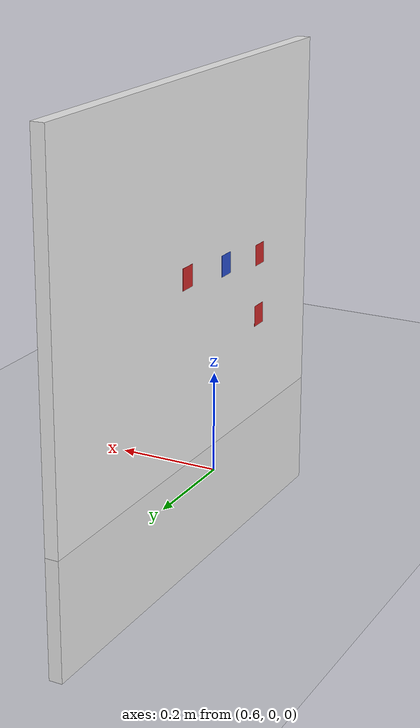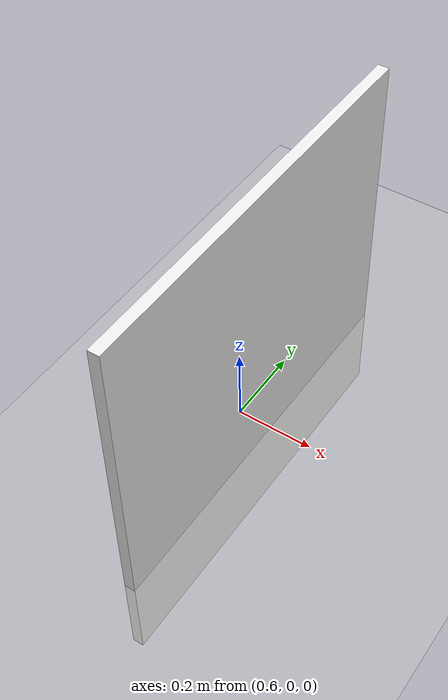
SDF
<sdf version="1.6">
 <world name="default">
  <light name="sun" type="directional">
   <pose>0 0 10 0 -0 0</pose>
   <diffuse>0.8 0.8 0.8 1</diffuse>
   <specular>0.2 0.2 0.2 1</specular>
   <attenuation>
    <range>1000</range>
    <constant>0.9</constant>
    <linear>0.01</linear>
    <quadratic>0.001</quadratic>
   </attenuation>
   <direction>-0.5 0.1 -0.9</direction>
  </light>
  <model name="ground_plane">
   <static>1</static>
   <link name="link">
    <collision name="collision">
     <geometry><plane><normal>0 0 1</normal><size>100 100</size></plane></geometry>
     <surface><friction><ode><mu>100</mu><mu2>50</mu2></ode></friction></surface>
    </collision>
    <visual name="visual">
     <cast_shadows>0</cast_shadows>
     <geometry><plane><normal>0 0 1</normal><size>100 100</size></plane></geometry>
     <material>
      <script><uri>file://media/materials/scripts/gazebo.material</uri><name>Gazebo/Grey</name></script>
     </material>
    </visual>
   </link>
  </model>
  <gravity>0 0 -9.8</gravity>
  <magnetic_field>6e-06 2.3e-05 -4.2e-05</magnetic_field>
  <atmosphere type="adiabatic"/>
  <physics name="default_physics" default="0" type="ode">
   <max_step_size>0.001</max_step_size>
   <real_time_factor>1</real_time_factor>
   <real_time_update_rate>1000</real_time_update_rate>
  </physics>
  <scene><ambient>0.4 0.4 0.4 1</ambient><background>0.7 0.7 0.7 1</background><shadows>1</shadows></scene>
  <spherical_coordinates>
   <surface_model>EARTH_WGS84</surface_model>
   <latitude_deg>0</latitude_deg>
   <longitude_deg>0</longitude_deg>
   <elevation>0</elevation>
   <heading_deg>0</heading_deg>
  </spherical_coordinates>
  <model name="board">
   <link name="link">
    <inertial>
     <mass>1</mass>
     <inertia>
      <ixx>0.166667</ixx>
      <ixy>0</ixy>
      <ixz>0</ixz>
      <iyy>0.166667</iyy>
      <iyz>0</iyz>
      <izz>0.166667</izz>
     </inertia>
    </inertial>
    <visual name="visual">
     <geometry><box><size>0.027451 1 1</size></box></geometry>
     <material>
      <script><name>Gazebo/White</name><uri>file://media/materials/scripts/gazebo.material</uri></script>
      <ambient>1 1 1 1</ambient>
      <diffuse>1 1 1 1</diffuse>
      <specular>0.1 0.1 0.1 1</specular>
      <emissive>0 0 0 0</emissive>
      <shader type="vertex"><normal_map>__default__</normal_map></shader>
     </material>
    </visual>
    <collision name="collision">
     <geometry><box><size>0.027451 1 1</size></box></geometry>
     <surface>
      <friction>
       <ode><mu>1</mu><mu2>1</mu2><fdir1>0 0 0</fdir1><slip1>0</slip1><slip2>0</slip2></ode>
       <torsional>
        <coefficient>1</coefficient>
        <patch_radius>0</patch_radius>
        <surface_radius>0</surface_radius>
        <use_patch_radius>1</use_patch_radius>
        <ode><slip>0</slip></ode>
       </torsional>
      </friction>
      <bounce><restitution_coefficient>0</restitution_coefficient><threshold>1e+06</threshold></bounce>
      <contact>
       <collide_without_contact>0</collide_without_contact>
       <collide_without_contact_bitmask>1</collide_without_contact_bitmask>
       <collide_bitmask>1</collide_bitmask>
       <ode>
        <soft_cfm>0</soft_cfm>
        <soft_erp>0.2</soft_erp>
        <kp>1e+13</kp>
        <kd>1</kd>
        <max_vel>0.01</max_vel>
        <min_depth>0</min_depth>
       </ode>
       <bullet>
        <split_impulse>1</split_impulse>
        <split_impulse_penetration_threshold>-0.01</split_impulse_penetration_threshold>
        <soft_cfm>0</soft_cfm>
        <soft_erp>0.2</soft_erp>
        <kp>1e+13</kp>
        <kd>1</kd>
       </bullet>
      </contact>
     </surface>
    </collision>
   </link>
   <static>1</static>
   <pose>0.674169 -0.041535 0.257191 0 -0 0</pose>
  </model>
  <model name="red_square">
   <link name="link">
    <inertial>
     <mass>1</mass>
     <inertia>
      <ixx>0.166667</ixx>
      <ixy>0</ixy>
      <ixz>0</ixz>
      <iyy>0.166667</iyy>
      <iyz>0</iyz>
      <izz>0.166667</izz>
     </inertia>
    </inertial>
    <visual name="visual">
     <geometry><box><size>0.000342 0.035814 0.041897</size></box></geometry>
     <material>
      <script><name>Gazebo/Red</name><uri>file://media/materials/scripts/gazebo.material</uri></script>
      <ambient>1 0 0 1</ambient>
      <diffuse>1 0 0 1</diffuse>
      <specular>0.01 0.01 0.01 0.01</specular>
      <emissive>0 0 0 0</emissive>
      <shader type="vertex"><normal_map>__default__</normal_map></shader>
     </material>
    </visual>
    <collision name="collision">
     <geometry><box><size>0.000342 0.035814 0.041897</size></box></geometry>
     <surface>
      <friction>
       <ode><mu>1</mu><mu2>1</mu2><fdir1>0 0 0</fdir1><slip1>0</slip1><slip2>0</slip2></ode>
       <torsional>
        <coefficient>1</coefficient>
        <patch_radius>0</patch_radius>
        <surface_radius>0</surface_radius>
        <use_patch_radius>1</use_patch_radius>
        <ode><slip>0</slip></ode>
       </torsional>
      </friction>
      <bounce><restitution_coefficient>0</restitution_coefficient><threshold>1e+06</threshold></bounce>
      <contact>
       <collide_without_contact>0</collide_without_contact>
       <collide_without_contact_bitmask>1</collide_without_contact_bitmask>
       <collide_bitmask>1</collide_bitmask>
       <ode>
        <soft_cfm>0</soft_cfm>
        <soft_erp>0.2</soft_erp>
        <kp>1e+13</kp>
        <kd>1</kd>
        <max_vel>0.01</max_vel>
        <min_depth>0</min_depth>
       </ode>
       <bullet>
        <split_impulse>1</split_impulse>
        <split_impulse_penetration_threshold>-0.01</split_impulse_penetration_threshold>
        <soft_cfm>0</soft_cfm>
        <soft_erp>0.2</soft_erp>
        <kp>1e+13</kp>
        <kd>1</kd>
       </bullet>
      </contact>
     </surface>
    </collision>
   </link>
   <static>1</static>
   <pose>0.596773 0.111341 0.420713 0 -0 0</pose>
  </model>
  <model name="red_square_0">
   <link name="link">
    <inertial>
     <mass>1</mass>
     <inertia>
      <ixx>0.166667</ixx>
      <ixy>0</ixy>
      <ixz>0</ixz>
      <iyy>0.166667</iyy>
      <iyz>0</iyz>
      <izz>0.166667</izz>
     </inertia>
    </inertial>
    <visual name="visual">
     <geometry><box><size>0.000342 0.035814 0.041897</size></box></geometry>
     <material>
      <script><name>Gazebo/Red</name><uri>file://media/materials/scripts/gazebo.material</uri></script>
      <ambient>1 0 0 1</ambient>
      <diffuse>1 0 0 1</diffuse>
      <specular>0.01 0.01 0.01 0.01</specular>
      <emissive>0 0 0 0</emissive>
      <shader type="vertex"><normal_map>__default__</normal_map></shader>
     </material>
    </visual>
    <collision name="collision">
     <geometry><box><size>0.000342 0.035814 0.041897</size></box></geometry>
     <surface>
      <friction>
       <ode><mu>1</mu><mu2>1</mu2><fdir1>0 0 0</fdir1><slip1>0</slip1><slip2>0</slip2></ode>
       <torsional>
        <coefficient>1</coefficient>
        <patch_radius>0</patch_radius>
        <surface_radius>0</surface_radius>
        <use_patch_radius>1</use_patch_radius>
        <ode><slip>0</slip></ode>
       </torsional>
      </friction>
      <bounce><restitution_coefficient>0</restitution_coefficient><threshold>1e+06</threshold></bounce>
      <contact>
       <collide_without_contact>0</collide_without_contact>
       <collide_without_contact_bitmask>1</collide_without_contact_bitmask>
       <collide_bitmask>1</collide_bitmask>
       <ode>
        <soft_cfm>0</soft_cfm>
        <soft_erp>0.2</soft_erp>
        <kp>1e+13</kp>
        <kd>1</kd>
        <max_vel>0.01</max_vel>
        <min_depth>0</min_depth>
       </ode>
       <bullet>
        <split_impulse>1</split_impulse>
        <split_impulse_penetration_threshold>-0.01</split_impulse_penetration_threshold>
        <soft_cfm>0</soft_cfm>
        <soft_erp>0.2</soft_erp>
        <kp>1e+13</kp>
        <kd>1</kd>
       </bullet>
      </contact>
     </surface>
    </collision>
   </link>
   <static>1</static>
   <pose>0.599461 -0.189105 0.387156 0 -0 0</pose>
  </model>
  <model name="blue_square">
   <link name="link">
    <inertial>
     <mass>1</mass>
     <inertia>
      <ixx>0.166667</ixx>
      <ixy>0</ixy>
      <ixz>0</ixz>
      <iyy>0.166667</iyy>
      <iyz>0</iyz>
      <izz>0.166667</izz>
     </inertia>
    </inertial>
    <visual name="visual">
     <geometry><box><size>0.000342 0.035814 0.041897</size></box></geometry>
     <material>
      <script><name>Gazebo/Blue</name><uri>file://media/materials/scripts/gazebo.material</uri></script>
      <ambient>0 0 1 1</ambient>
      <diffuse>0 0 1 1</diffuse>
      <specular>0.01 0.01 0.01 0.01</specular>
      <emissive>0 0 0 0</emissive>
      <shader type="vertex"><normal_map>__default__</normal_map></shader>
     </material>
    </visual>
    <collision name="collision">
     <geometry><box><size>0.000342 0.035814 0.041897</size></box></geometry>
     <surface>
      <friction>
       <ode><mu>1</mu><mu2>1</mu2><fdir1>0 0 0</fdir1><slip1>0</slip1><slip2>0</slip2></ode>
       <torsional>
        <coefficient>1</coefficient>
        <patch_radius>0</patch_radius>
        <surface_radius>0</surface_radius>
        <use_patch_radius>1</use_patch_radius>
        <ode><slip>0</slip></ode>
       </torsional>
      </friction>
      <bounce><restitution_coefficient>0</restitution_coefficient><threshold>1e+06</threshold></bounce>
      <contact>
       <collide_without_contact>0</collide_without_contact>
       <collide_without_contact_bitmask>1</collide_without_contact_bitmask>
       <collide_bitmask>1</collide_bitmask>
       <ode>
        <soft_cfm>0</soft_cfm>
        <soft_erp>0.2</soft_erp>
        <kp>1e+13</kp>
        <kd>1</kd>
        <max_vel>0.01</max_vel>
        <min_depth>0</min_depth>
       </ode>
       <bullet>
        <split_impulse>1</split_impulse>
        <split_impulse_penetration_threshold>-0.01</split_impulse_penetration_threshold>
        <soft_cfm>0</soft_cfm>
        <soft_erp>0.2</soft_erp>
        <kp>1e+13</kp>
        <kd>1</kd>
       </bullet>
      </contact>
     </surface>
    </collision>
   </link>
   <static>1</static>
   <pose>0.59652 -0.039774 0.405197 0 -0 0</pose>
  </model>
  <model name="red_square_1">
   <link name="link">
    <inertial>
     <mass>1</mass>
     <inertia>
      <ixx>0.166667</ixx>
      <ixy>0</ixy>
      <ixz>0</ixz>
      <iyy>0.166667</iyy>
      <iyz>0</iyz>
      <izz>0.166667</izz>
     </inertia>
    </inertial>
    <visual name="visual">
     <geometry><box><size>0.000342 0.035814 0.041897</size></box></geometry>
     <material>
      <script><name>Gazebo/Red</name><uri>file://media/materials/scripts/gazebo.material</uri></script>
      <ambient>1 0 0 1</ambient>
      <diffuse>1 0 0 1</diffuse>
      <specular>0.01 0.01 0.01 0.01</specular>
      <emissive>0 0 0 0</emissive>
      <shader type="vertex"><normal_map>__default__</normal_map></shader>
     </material>
    </visual>
    <collision name="collision">
     <geometry><box><size>0.000342 0.035814 0.041897</size></box></geometry>
     <surface>
      <friction>
       <ode><mu>1</mu><mu2>1</mu2><fdir1>0 0 0</fdir1><slip1>0</slip1><slip2>0</slip2></ode>
       <torsional>
        <coefficient>1</coefficient>
        <patch_radius>0</patch_radius>
        <surface_radius>0</surface_radius>
        <use_patch_radius>1</use_patch_radius>
        <ode><slip>0</slip></ode>
       </torsional>
      </friction>
      <bounce><restitution_coefficient>0</restitution_coefficient><threshold>1e+06</threshold></bounce>
      <contact>
       <collide_without_contact>0</collide_without_contact>
       <collide_without_contact_bitmask>1</collide_without_contact_bitmask>
       <collide_bitmask>1</collide_bitmask>
       <ode>
        <soft_cfm>0</soft_cfm>
        <soft_erp>0.2</soft_erp>
        <kp>1e+13</kp>
        <kd>1</kd>
        <max_vel>0.01</max_vel>
        <min_depth>0</min_depth>
       </ode>
       <bullet>
        <split_impulse>1</split_impulse>
        <split_impulse_penetration_threshold>-0.01</split_impulse_penetration_threshold>
        <soft_cfm>0</soft_cfm>
        <soft_erp>0.2</soft_erp>
        <kp>1e+13</kp>
        <kd>1</kd>
       </bullet>
      </contact>
     </surface>
    </collision>
   </link>
   <static>1</static>
   <pose>0.599062 -0.1875 0.262893 0 -0 0</pose>
  </model>
 </world>
</sdf>
